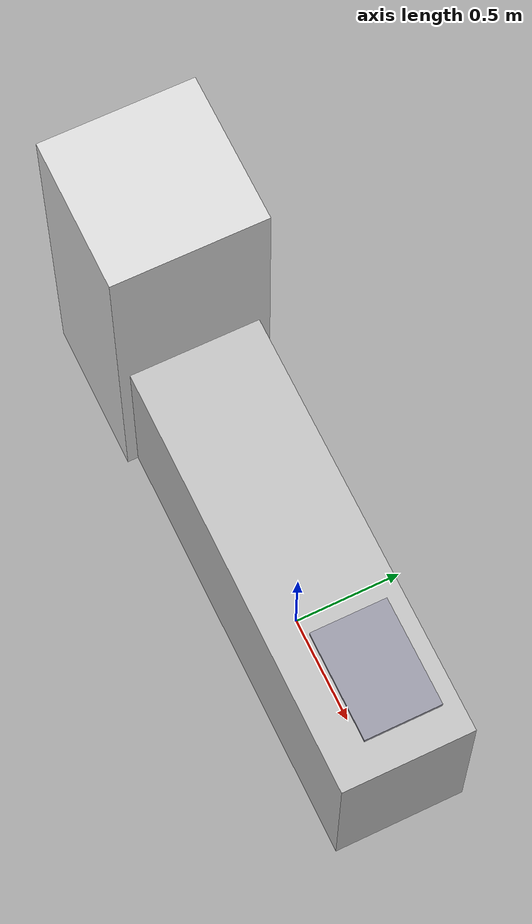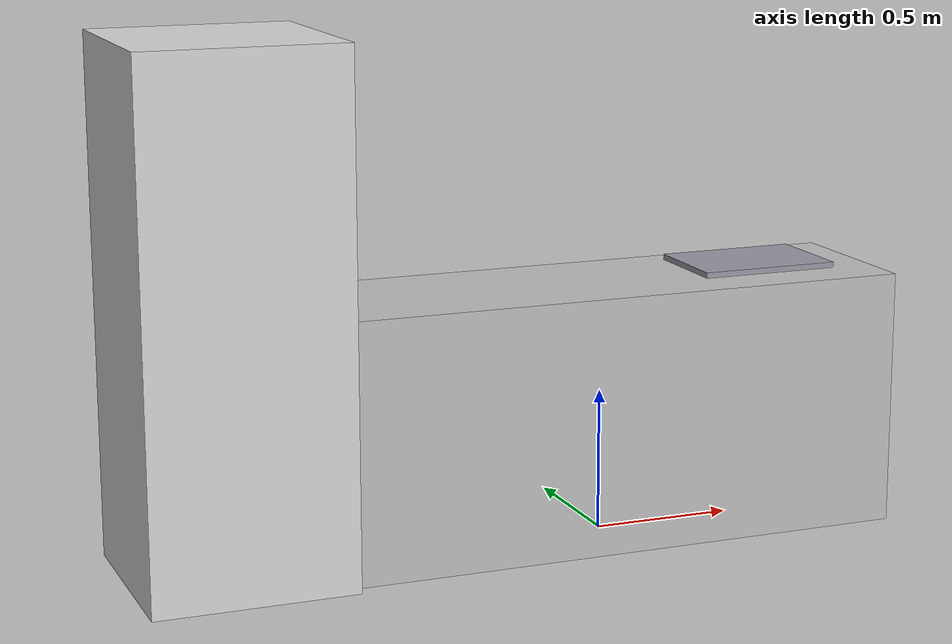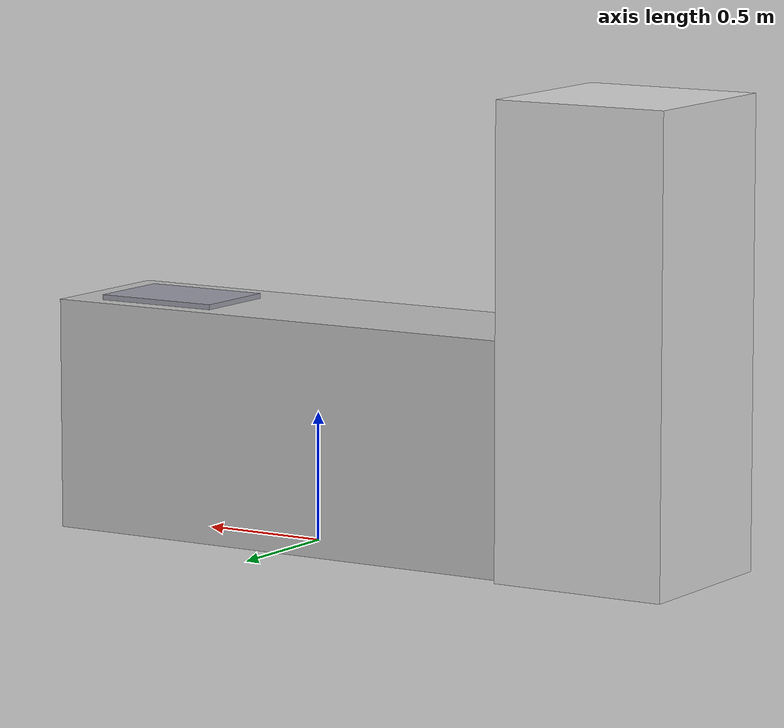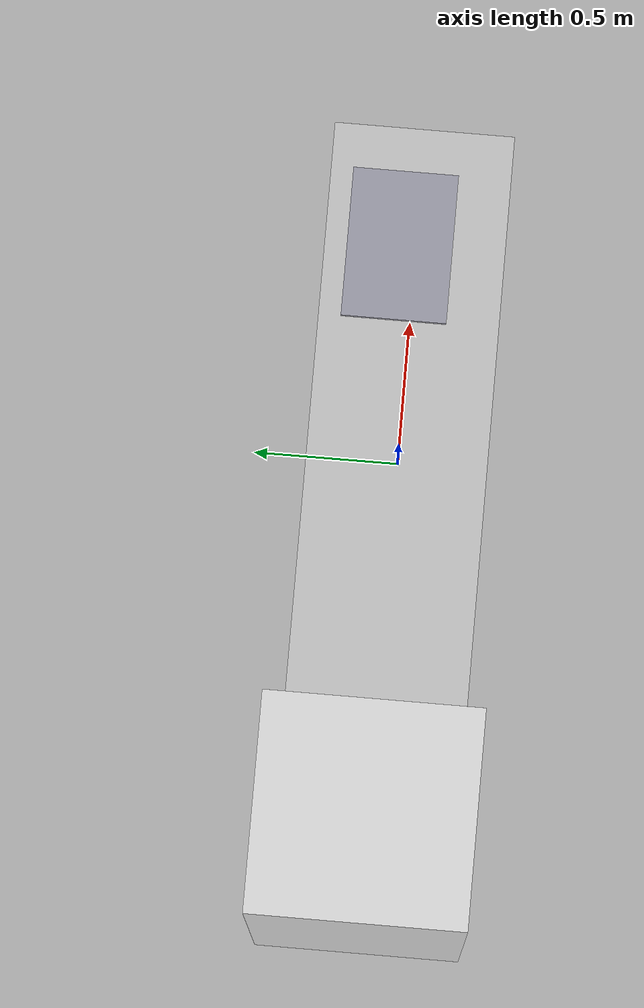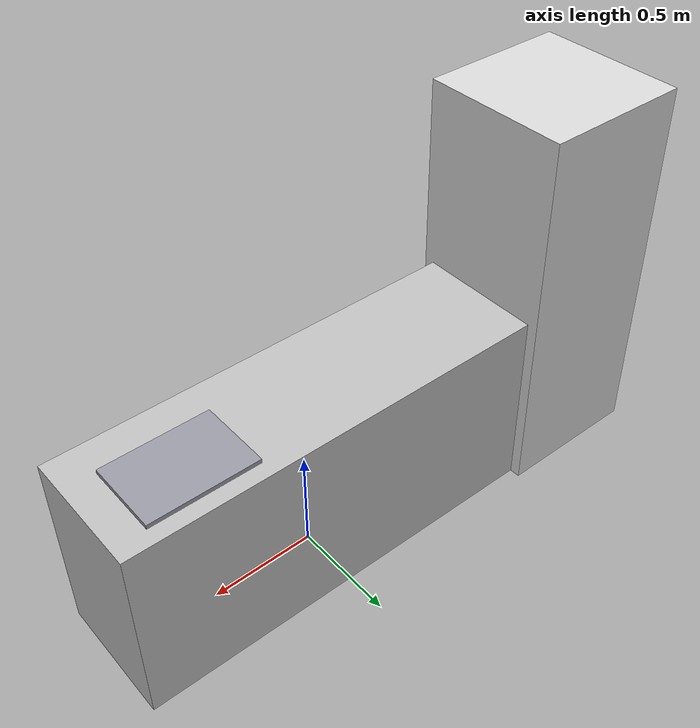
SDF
<?xml version="1.0"?>

<sdf version="1.10">

  <model name="break_counter">

    <static>true</static>

    <link name="counter_link">

      <!-- COUNTER                     -->

      <collision name="counter_collision">
        <pose>0 0 0.45 0 0 0</pose>
        <geometry>
          <box>
            <size>2.0 0.6 0.9</size>
          </box>
        </geometry>
      </collision>

      <visual name="counter_visual">
        <pose>0 0 0.45 0 0 0</pose>
        <geometry>
          <box>
            <size>2.0 0.6 0.9</size>
          </box>
        </geometry>
        <material>
          <ambient>0.75 0.75 0.75 1</ambient>
          <diffuse>0.75 0.75 0.75 1</diffuse>
          <specular>0.4 0.4 0.4 1</specular>
        </material>
      </visual>

      <!-- SINK BASIN (visual accent)  -->

      <visual name="sink_visual">
        <pose>0.6 0.05 0.91 0 0 0</pose>
        <geometry>
          <box>
            <size>0.5 0.35 0.02</size>
          </box>
        </geometry>
        <material>
          <ambient>0.6 0.6 0.65 1</ambient>
          <diffuse>0.6 0.6 0.65 1</diffuse>
          <specular>0.6 0.6 0.6 1</specular>
        </material>
      </visual>

      <!-- FRIDGE                      -->

      <collision name="fridge_collision">
        <pose>-1.35 0 0.9 0 0 0</pose>
        <geometry>
          <box>
            <size>0.7 0.7 1.8</size>
          </box>
        </geometry>
      </collision>

      <visual name="fridge_visual">
        <pose>-1.35 0 0.9 0 0 0</pose>
        <geometry>
          <box>
            <size>0.7 0.7 1.8</size>
          </box>
        </geometry>
        <material>
          <ambient>0.85 0.85 0.85 1</ambient>
          <diffuse>0.85 0.85 0.85 1</diffuse>
          <specular>0.5 0.5 0.5 1</specular>
        </material>
      </visual>

    </link>

  </model>

</sdf>
